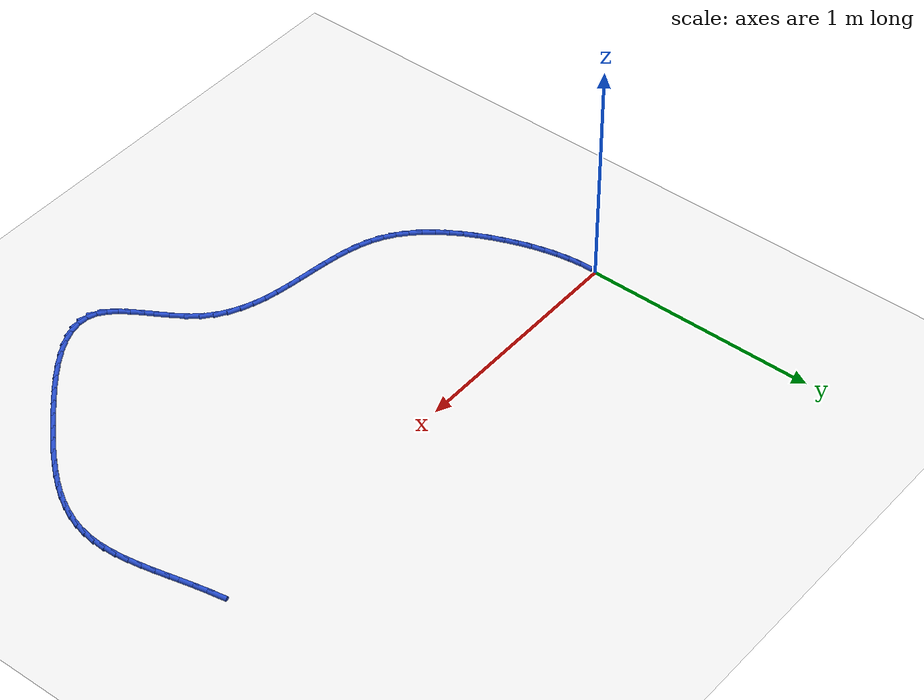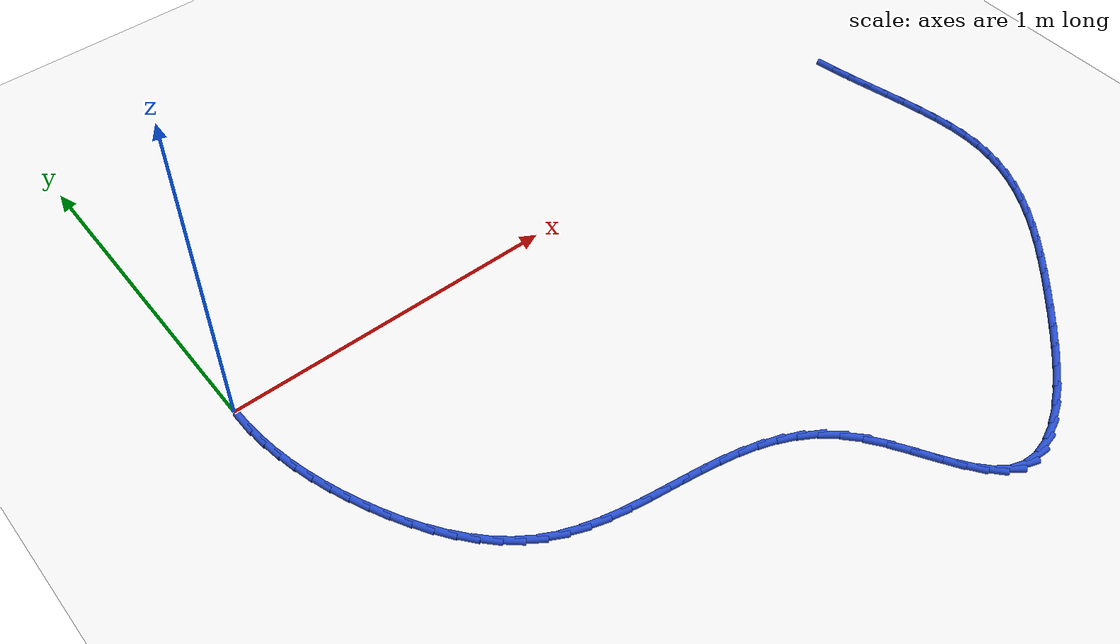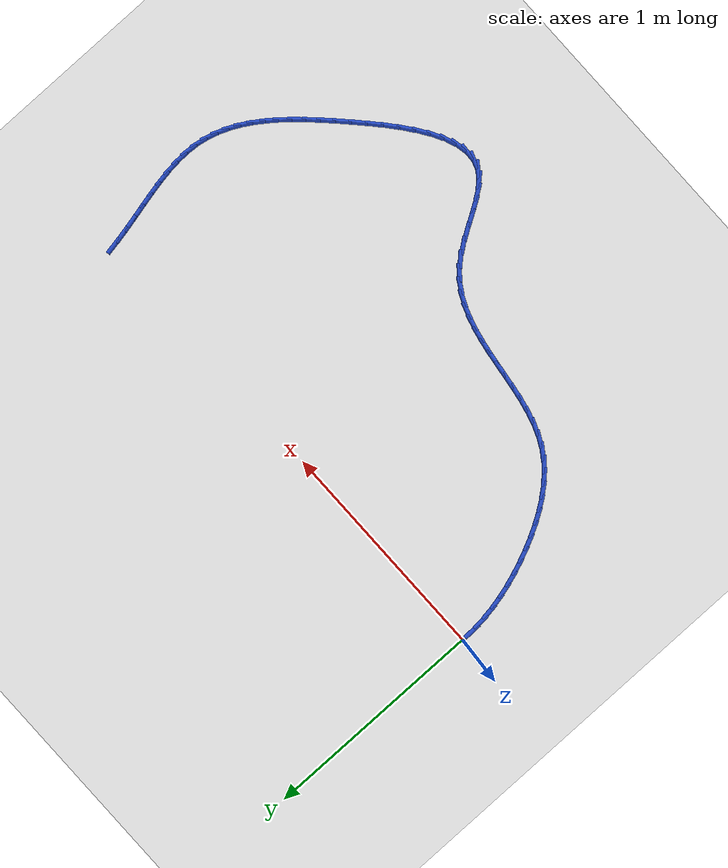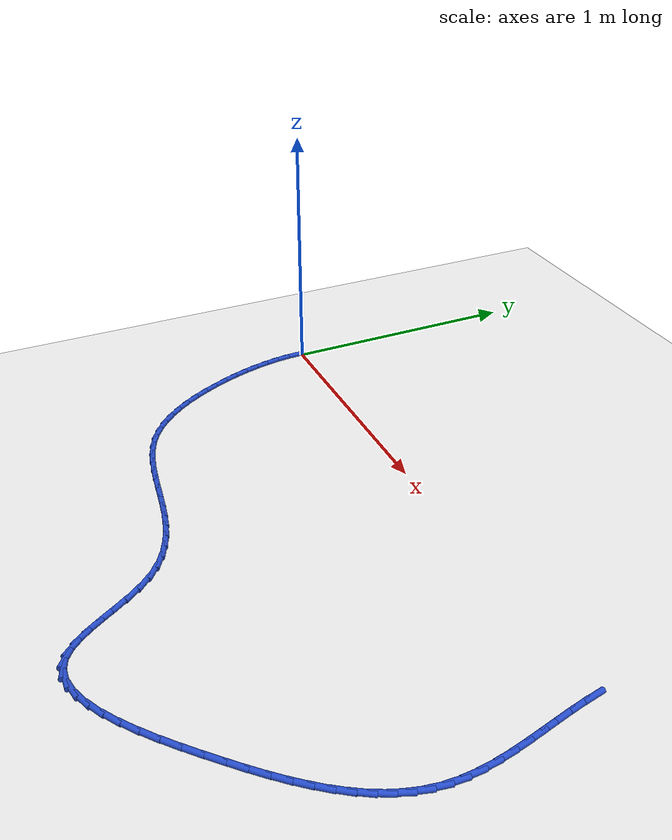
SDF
<sdf version="1.6">
 <world name="default">
  <model name="ground_plane">
   <static>1</static>
   <link name="link">
    <collision name="collision">
     <geometry><plane><normal>0 0 1</normal><size>100 100</size></plane></geometry>
     <surface><friction><ode><mu>100</mu><mu2>50</mu2></ode></friction></surface>
    </collision>
    <visual name="visual">
     <cast_shadows>0</cast_shadows>
     <geometry><plane><normal>0 0 1</normal><size>100 100</size></plane></geometry>
     <material>
      <script><uri>file://media/materials/scripts/gazebo.material</uri><name>Gazebo/WhiteGlow</name></script>
     </material>
    </visual>
   </link>
  </model>
  <model name="line">
   <link name="link_69">
    <pose>2.1973186577995145 -0.017034470085361225 0.01 0 1.57 -1.3849257255704295</pose>
    <collision name="collision">
     <geometry><cylinder><radius>0.01</radius><length>0.08</length></cylinder></geometry>
    </collision>
    <visual name="visual">
     <material>
      <script><name>Gazebo/Blue</name><uri>file://media/materials/scripts/gazebo.material</uri></script>
     </material>
     <geometry><cylinder><radius>0.01</radius><length>0.08</length></cylinder></geometry>
    </visual>
   </link>
   <link name="link_70">
    <pose>2.2079804380482653 -0.07373367814717799 0.01 0 1.57 -1.356535809975554</pose>
    <collision name="collision">
     <geometry><cylinder><radius>0.01</radius><length>0.08</length></cylinder></geometry>
    </collision>
    <visual name="visual">
     <material>
      <script><name>Gazebo/Blue</name><uri>file://media/materials/scripts/gazebo.material</uri></script>
     </material>
     <geometry><cylinder><radius>0.01</radius><length>0.08</length></cylinder></geometry>
    </visual>
   </link>
   <link name="link_71">
    <pose>2.2203728988543388 -0.1306841706579184 0.01 0 1.57 -1.341860793427429</pose>
    <collision name="collision">
     <geometry><cylinder><radius>0.01</radius><length>0.08</length></cylinder></geometry>
    </collision>
    <visual name="visual">
     <material>
      <script><name>Gazebo/Blue</name><uri>file://media/materials/scripts/gazebo.material</uri></script>
     </material>
     <geometry><cylinder><radius>0.01</radius><length>0.08</length></cylinder></geometry>
    </visual>
   </link>
   <link name="link_72">
    <pose>2.2336493698173423 -0.1876596421804087 0.01 0 1.57 -1.3404536822452415</pose>
    <collision name="collision">
     <geometry><cylinder><radius>0.01</radius><length>0.08</length></cylinder></geometry>
    </collision>
    <visual name="visual">
     <material>
      <script><name>Gazebo/Blue</name><uri>file://media/materials/scripts/gazebo.material</uri></script>
     </material>
     <geometry><cylinder><radius>0.01</radius><length>0.08</length></cylinder></geometry>
    </visual>
   </link>
   <link name="link_73">
    <pose>2.2469631805368815 -0.24443378727747544 0.01 0 1.57 -1.3524143530486437</pose>
    <collision name="collision">
     <geometry><cylinder><radius>0.01</radius><length>0.08</length></cylinder></geometry>
    </collision>
    <visual name="visual">
     <material>
      <script><name>Gazebo/Blue</name><uri>file://media/materials/scripts/gazebo.material</uri></script>
     </material>
     <geometry><cylinder><radius>0.01</radius><length>0.08</length></cylinder></geometry>
    </visual>
   </link>
   <link name="link_74">
    <pose>2.2594676606125614 -0.3007803005119425 0.01 0 1.57 -1.3784132512068</pose>
    <collision name="collision">
     <geometry><cylinder><radius>0.01</radius><length>0.08</length></cylinder></geometry>
    </collision>
    <visual name="visual">
     <material>
      <script><name>Gazebo/Blue</name><uri>file://media/materials/scripts/gazebo.material</uri></script>
     </material>
     <geometry><cylinder><radius>0.01</radius><length>0.08</length></cylinder></geometry>
    </visual>
   </link>
   <link name="link_75">
    <pose>2.270316139643991 -0.35647287644663667 0.01 0 1.57 -1.419695389007235</pose>
    <collision name="collision">
     <geometry><cylinder><radius>0.01</radius><length>0.08</length></cylinder></geometry>
    </collision>
    <visual name="visual">
     <material>
      <script><name>Gazebo/Blue</name><uri>file://media/materials/scripts/gazebo.material</uri></script>
     </material>
     <geometry><cylinder><radius>0.01</radius><length>0.08</length></cylinder></geometry>
    </visual>
   </link>
   <link name="link_76">
    <pose>2.278661947230774 -0.4112852096443834 0.01 0 1.57 -1.4780293225254646</pose>
    <collision name="collision">
     <geometry><cylinder><radius>0.01</radius><length>0.08</length></cylinder></geometry>
    </collision>
    <visual name="visual">
     <material>
      <script><name>Gazebo/Blue</name><uri>file://media/materials/scripts/gazebo.material</uri></script>
     </material>
     <geometry><cylinder><radius>0.01</radius><length>0.08</length></cylinder></geometry>
    </visual>
   </link>
   <link name="link_77">
    <pose>2.283658412972516 -0.46499099466800853 0.01 0 1.57 -1.5555137913919852</pose>
    <collision name="collision">
     <geometry><cylinder><radius>0.01</radius><length>0.08</length></cylinder></geometry>
    </collision>
    <visual name="visual">
     <material>
      <script><name>Gazebo/Blue</name><uri>file://media/materials/scripts/gazebo.material</uri></script>
     </material>
     <geometry><cylinder><radius>0.01</radius><length>0.08</length></cylinder></geometry>
    </visual>
   </link>
   <link name="link_78">
    <pose>2.2844588664688255 -0.5173639260803384 0.01 0 1.57 1.4879993568313852</pose>
    <collision name="collision">
     <geometry><cylinder><radius>0.01</radius><length>0.08</length></cylinder></geometry>
    </collision>
    <visual name="visual">
     <material>
      <script><name>Gazebo/Blue</name><uri>file://media/materials/scripts/gazebo.material</uri></script>
     </material>
     <geometry><cylinder><radius>0.01</radius><length>0.08</length></cylinder></geometry>
    </visual>
   </link>
   <link name="link_79">
    <pose>2.280241203972976 -0.5681872865945572 0.01 0 1.57 1.3801848130407448</pose>
    <collision name="collision">
     <geometry><cylinder><radius>0.01</radius><length>0.08</length></cylinder></geometry>
    </collision>
    <visual name="visual">
     <material>
      <script><name>Gazebo/Blue</name><uri>file://media/materials/scripts/gazebo.material</uri></script>
     </material>
     <geometry><cylinder><radius>0.01</radius><length>0.08</length></cylinder></geometry>
    </visual>
   </link>
   <link name="link_80">
    <pose>2.270733974750749 -0.6174592739851961 0.01 0 1.57 1.2765421704639537</pose>
    <collision name="collision">
     <geometry><cylinder><radius>0.01</radius><length>0.08</length></cylinder></geometry>
    </collision>
    <visual name="visual">
     <material>
      <script><name>Gazebo/Blue</name><uri>file://media/materials/scripts/gazebo.material</uri></script>
     </material>
     <geometry><cylinder><radius>0.01</radius><length>0.08</length></cylinder></geometry>
    </visual>
   </link>
   <link name="link_81">
    <pose>2.2562085087130908 -0.6653899285719131 0.01 0 1.57 1.1806394506742548</pose>
    <collision name="collision">
     <geometry><cylinder><radius>0.01</radius><length>0.08</length></cylinder></geometry>
    </collision>
    <visual name="visual">
     <material>
      <script><name>Gazebo/Blue</name><uri>file://media/materials/scripts/gazebo.material</uri></script>
     </material>
     <geometry><cylinder><radius>0.01</radius><length>0.08</length></cylinder></geometry>
    </visual>
   </link>
   <link name="link_82">
    <pose>2.236959127848804 -0.7121982642815408 0.01 0 1.57 1.0945688222387244</pose>
    <collision name="collision">
     <geometry><cylinder><radius>0.01</radius><length>0.08</length></cylinder></geometry>
    </collision>
    <visual name="visual">
     <material>
      <script><name>Gazebo/Blue</name><uri>file://media/materials/scripts/gazebo.material</uri></script>
     </material>
     <geometry><cylinder><radius>0.01</radius><length>0.08</length></cylinder></geometry>
    </visual>
   </link>
   <link name="link_83">
    <pose>2.2132801541466915 -0.7581032950409091 0.01 0 1.57 1.0193643728738007</pose>
    <collision name="collision">
     <geometry><cylinder><radius>0.01</radius><length>0.08</length></cylinder></geometry>
    </collision>
    <visual name="visual">
     <material>
      <script><name>Gazebo/Blue</name><uri>file://media/materials/scripts/gazebo.material</uri></script>
     </material>
     <geometry><cylinder><radius>0.01</radius><length>0.08</length></cylinder></geometry>
    </visual>
   </link>
   <link name="link_84">
    <pose>2.185465909595557 -0.8033240347768503 0.01 0 1.57 0.9551929601029895</pose>
    <collision name="collision">
     <geometry><cylinder><radius>0.01</radius><length>0.08</length></cylinder></geometry>
    </collision>
    <visual name="visual">
     <material>
      <script><name>Gazebo/Blue</name><uri>file://media/materials/scripts/gazebo.material</uri></script>
     </material>
     <geometry><cylinder><radius>0.01</radius><length>0.08</length></cylinder></geometry>
    </visual>
   </link>
   <link name="link_85">
    <pose>2.1538107161842017 -0.8480794974161961 0.01 0 1.57 0.9016358362586027</pose>
    <collision name="collision">
     <geometry><cylinder><radius>0.01</radius><length>0.08</length></cylinder></geometry>
    </collision>
    <visual name="visual">
     <material>
      <script><name>Gazebo/Blue</name><uri>file://media/materials/scripts/gazebo.material</uri></script>
     </material>
     <geometry><cylinder><radius>0.01</radius><length>0.08</length></cylinder></geometry>
    </visual>
   </link>
   <link name="link_86">
    <pose>2.1186088959014295 -0.8925886968857779 0.01 0 1.57 0.8579509660002833</pose>
    <collision name="collision">
     <geometry><cylinder><radius>0.01</radius><length>0.08</length></cylinder></geometry>
    </collision>
    <visual name="visual">
     <material>
      <script><name>Gazebo/Blue</name><uri>file://media/materials/scripts/gazebo.material</uri></script>
     </material>
     <geometry><cylinder><radius>0.01</radius><length>0.08</length></cylinder></geometry>
    </visual>
   </link>
   <link name="link_87">
    <pose>2.080154770736042 -0.9370706471124275 0.01 0 1.57 0.8232679009975615</pose>
    <collision name="collision">
     <geometry><cylinder><radius>0.01</radius><length>0.08</length></cylinder></geometry>
    </collision>
    <visual name="visual">
     <material>
      <script><name>Gazebo/Blue</name><uri>file://media/materials/scripts/gazebo.material</uri></script>
     </material>
     <geometry><cylinder><radius>0.01</radius><length>0.08</length></cylinder></geometry>
    </visual>
   </link>
   <link name="link_88">
    <pose>2.0387426626768432 -0.9817443620229758 0.01 0 1.57 0.7967112920725055</pose>
    <collision name="collision">
     <geometry><cylinder><radius>0.01</radius><length>0.08</length></cylinder></geometry>
    </collision>
    <visual name="visual">
     <material>
      <script><name>Gazebo/Blue</name><uri>file://media/materials/scripts/gazebo.material</uri></script>
     </material>
     <geometry><cylinder><radius>0.01</radius><length>0.08</length></cylinder></geometry>
    </visual>
   </link>
   <link name="link_89">
    <pose>1.994666893712635 -1.0268288555442544 0.01 0 1.57 0.7774683531872651</pose>
    <collision name="collision">
     <geometry><cylinder><radius>0.01</radius><length>0.08</length></cylinder></geometry>
    </collision>
    <visual name="visual">
     <material>
      <script><name>Gazebo/Blue</name><uri>file://media/materials/scripts/gazebo.material</uri></script>
     </material>
     <geometry><cylinder><radius>0.01</radius><length>0.08</length></cylinder></geometry>
    </visual>
   </link>
   <link name="link_90">
    <pose>1.9482217858322206 -1.072543141603095 0.01 0 1.57 0.7637480107080004</pose>
    <collision name="collision">
     <geometry><cylinder><radius>0.01</radius><length>0.08</length></cylinder></geometry>
    </collision>
    <visual name="visual">
     <material>
      <script><name>Gazebo/Blue</name><uri>file://media/materials/scripts/gazebo.material</uri></script>
     </material>
     <geometry><cylinder><radius>0.01</radius><length>0.08</length></cylinder></geometry>
    </visual>
   </link>
   <link name="link_91">
    <pose>1.89972158699088 -1.1189874560079636 0.01 0 1.57 0.7464217289670588</pose>
    <collision name="collision">
     <geometry><cylinder><radius>0.01</radius><length>0.08</length></cylinder></geometry>
    </collision>
    <visual name="visual">
     <material>
      <script><name>Gazebo/Blue</name><uri>file://media/materials/scripts/gazebo.material</uri></script>
     </material>
     <geometry><cylinder><radius>0.01</radius><length>0.08</length></cylinder></geometry>
    </visual>
   </link>
   <link name="link_92">
    <pose>1.8496403704826012 -1.165309320277675 0.01 0 1.57 0.7206706636192776</pose>
    <collision name="collision">
     <geometry><cylinder><radius>0.01</radius><length>0.08</length></cylinder></geometry>
    </collision>
    <visual name="visual">
     <material>
      <script><name>Gazebo/Blue</name><uri>file://media/materials/scripts/gazebo.material</uri></script>
     </material>
     <geometry><cylinder><radius>0.01</radius><length>0.08</length></cylinder></geometry>
    </visual>
   </link>
   <link name="link_93">
    <pose>1.7985290718054243 -1.210198082522943 0.01 0 1.57 0.6849409070924969</pose>
    <collision name="collision">
     <geometry><cylinder><radius>0.01</radius><length>0.08</length></cylinder></geometry>
    </collision>
    <visual name="visual">
     <material>
      <script><name>Gazebo/Blue</name><uri>file://media/materials/scripts/gazebo.material</uri></script>
     </material>
     <geometry><cylinder><radius>0.01</radius><length>0.08</length></cylinder></geometry>
    </visual>
   </link>
   <link name="link_94">
    <pose>1.7469391162652717 -1.2523401711236577 0.01 0 1.57 0.6365574526674862</pose>
    <collision name="collision">
     <geometry><cylinder><radius>0.01</radius><length>0.08</length></cylinder></geometry>
    </collision>
    <visual name="visual">
     <material>
      <script><name>Gazebo/Blue</name><uri>file://media/materials/scripts/gazebo.material</uri></script>
     </material>
     <geometry><cylinder><radius>0.01</radius><length>0.08</length></cylinder></geometry>
    </visual>
   </link>
   <link name="link_95">
    <pose>1.6954219291680637 -1.2904220144597087 0.01 0 1.57 0.5712137604818411</pose>
    <collision name="collision">
     <geometry><cylinder><radius>0.01</radius><length>0.08</length></cylinder></geometry>
    </collision>
    <visual name="visual">
     <material>
      <script><name>Gazebo/Blue</name><uri>file://media/materials/scripts/gazebo.material</uri></script>
     </material>
     <geometry><cylinder><radius>0.01</radius><length>0.08</length></cylinder></geometry>
    </visual>
   </link>
   <link name="link_96">
    <pose>1.6445289358197244 -1.3231300409109856 0.01 0 1.57 0.48216921990299527</pose>
    <collision name="collision">
     <geometry><cylinder><radius>0.01</radius><length>0.08</length></cylinder></geometry>
    </collision>
    <visual name="visual">
     <material>
      <script><name>Gazebo/Blue</name><uri>file://media/materials/scripts/gazebo.material</uri></script>
     </material>
     <geometry><cylinder><radius>0.01</radius><length>0.08</length></cylinder></geometry>
    </visual>
   </link>
   <link name="link_97">
    <pose>1.594811561526175 -1.3491506788573788 0.01 0 1.57 0.3591963336554845</pose>
    <collision name="collision">
     <geometry><cylinder><radius>0.01</radius><length>0.08</length></cylinder></geometry>
    </collision>
    <visual name="visual">
     <material>
      <script><name>Gazebo/Blue</name><uri>file://media/materials/scripts/gazebo.material</uri></script>
     </material>
     <geometry><cylinder><radius>0.01</radius><length>0.08</length></cylinder></geometry>
    </visual>
   </link>
   <link name="link_98">
    <pose>1.5468212315933378 -1.3671703566787787 0.01 0 1.57 0.18818192482241722</pose>
    <collision name="collision">
     <geometry><cylinder><radius>0.01</radius><length>0.08</length></cylinder></geometry>
    </collision>
    <visual name="visual">
     <material>
      <script><name>Gazebo/Blue</name><uri>file://media/materials/scripts/gazebo.material</uri></script>
     </material>
     <geometry><cylinder><radius>0.01</radius><length>0.08</length></cylinder></geometry>
    </visual>
   </link>
   <link name="link_99">
    <pose>1.5011093713271346 -1.3758755027550749 0.01 0 1.57 -0.04481300873442708</pose>
    <collision name="collision">
     <geometry><cylinder><radius>0.01</radius><length>0.08</length></cylinder></geometry>
    </collision>
    <visual name="visual">
     <material>
      <script><name>Gazebo/Blue</name><uri>file://media/materials/scripts/gazebo.material</uri></script>
     </material>
     <geometry><cylinder><radius>0.01</radius><length>0.08</length></cylinder></geometry>
    </visual>
   </link>
   <link name="link_100">
    <pose>1.4582274060334868 -1.3739525454661572 0.01 0 1.57 -0.3375628093932596</pose>
    <collision name="collision">
     <geometry><cylinder><radius>0.01</radius><length>0.08</length></cylinder></geometry>
    </collision>
    <visual name="visual">
     <material>
      <script><name>Gazebo/Blue</name><uri>file://media/materials/scripts/gazebo.material</uri></script>
     </material>
     <geometry><cylinder><radius>0.01</radius><length>0.08</length></cylinder></geometry>
    </visual>
   </link>
   <link name="link_101">
    <pose>1.4187267535622252 -1.3600879318327947 0.01 0 1.57 -0.6340761988292134</pose>
    <collision name="collision">
     <geometry><cylinder><radius>0.01</radius><length>0.08</length></cylinder></geometry>
    </collision>
    <visual name="visual">
     <material>
      <script><name>Gazebo/Blue</name><uri>file://media/materials/scripts/gazebo.material</uri></script>
     </material>
     <geometry><cylinder><radius>0.01</radius><length>0.08</length></cylinder></geometry>
    </visual>
   </link>
   <link name="link_102">
    <pose>1.3828608810578098 -1.3337130115402982 0.01 0 1.57 -0.8378586093425942</pose>
    <collision name="collision">
     <geometry><cylinder><radius>0.01</radius><length>0.08</length></cylinder></geometry>
    </collision>
    <visual name="visual">
     <material>
      <script><name>Gazebo/Blue</name><uri>file://media/materials/scripts/gazebo.material</uri></script>
     </material>
     <geometry><cylinder><radius>0.01</radius><length>0.08</length></cylinder></geometry>
    </visual>
   </link>
   <link name="link_103">
    <pose>1.3497943535598234 -1.2969814841954002 0.01 0 1.57 -0.9550534544021011</pose>
    <collision name="collision">
     <geometry><cylinder><radius>0.01</radius><length>0.08</length></cylinder></geometry>
    </collision>
    <visual name="visual">
     <material>
      <script><name>Gazebo/Blue</name><uri>file://media/materials/scripts/gazebo.material</uri></script>
     </material>
     <geometry><cylinder><radius>0.01</radius><length>0.08</length></cylinder></geometry>
    </visual>
   </link>
   <link name="link_104">
    <pose>1.3184430495963924 -1.2526687873020055 0.01 0 1.57 -1.0118869373610824</pose>
    <collision name="collision">
     <geometry><cylinder><radius>0.01</radius><length>0.08</length></cylinder></geometry>
    </collision>
    <visual name="visual">
     <material>
      <script><name>Gazebo/Blue</name><uri>file://media/materials/scripts/gazebo.material</uri></script>
     </material>
     <geometry><cylinder><radius>0.01</radius><length>0.08</length></cylinder></geometry>
    </visual>
   </link>
   <link name="link_105">
    <pose>1.2877228476956457 -1.203550358364022 0.01 0 1.57 -1.0234482499466875</pose>
    <collision name="collision">
     <geometry><cylinder><radius>0.01</radius><length>0.08</length></cylinder></geometry>
    </collision>
    <visual name="visual">
     <material>
      <script><name>Gazebo/Blue</name><uri>file://media/materials/scripts/gazebo.material</uri></script>
     </material>
     <geometry><cylinder><radius>0.01</radius><length>0.08</length></cylinder></geometry>
    </visual>
   </link>
   <link name="link_106">
    <pose>1.256549626385711 -1.1524016348853556 0.01 0 1.57 -0.9951462147761706</pose>
    <collision name="collision">
     <geometry><cylinder><radius>0.01</radius><length>0.08</length></cylinder></geometry>
    </collision>
    <visual name="visual">
     <material>
      <script><name>Gazebo/Blue</name><uri>file://media/materials/scripts/gazebo.material</uri></script>
     </material>
     <geometry><cylinder><radius>0.01</radius><length>0.08</length></cylinder></geometry>
    </visual>
   </link>
   <link name="link_107">
    <pose>1.2238392641947164 -1.101998054369913 0.01 0 1.57 -0.9249870926200119</pose>
    <collision name="collision">
     <geometry><cylinder><radius>0.01</radius><length>0.08</length></cylinder></geometry>
    </collision>
    <visual name="visual">
     <material>
      <script><name>Gazebo/Blue</name><uri>file://media/materials/scripts/gazebo.material</uri></script>
     </material>
     <geometry><cylinder><radius>0.01</radius><length>0.08</length></cylinder></geometry>
    </visual>
   </link>
   <link name="link_108">
    <pose>1.1885076396507896 -1.0551150543216001 0.01 0 1.57 -0.8063261941038757</pose>
    <collision name="collision">
     <geometry><cylinder><radius>0.01</radius><length>0.08</length></cylinder></geometry>
    </collision>
    <visual name="visual">
     <material>
      <script><name>Gazebo/Blue</name><uri>file://media/materials/scripts/gazebo.material</uri></script>
     </material>
     <geometry><cylinder><radius>0.01</radius><length>0.08</length></cylinder></geometry>
    </visual>
   </link>
   <link name="link_109">
    <pose>1.1495060913823814 -1.0144459119264764 0.01 0 1.57 -0.6630113426545055</pose>
    <collision name="collision">
     <geometry><cylinder><radius>0.01</radius><length>0.08</length></cylinder></geometry>
    </collision>
    <visual name="visual">
     <material>
      <script><name>Gazebo/Blue</name><uri>file://media/materials/scripts/gazebo.material</uri></script>
     </material>
     <geometry><cylinder><radius>0.01</radius><length>0.08</length></cylinder></geometry>
    </visual>
   </link>
   <link name="link_110">
    <pose>1.106554491431221 -0.9809032283731984 0.01 0 1.57 -0.5302668849809263</pose>
    <collision name="collision">
     <geometry><cylinder><radius>0.01</radius><length>0.08</length></cylinder></geometry>
    </collision>
    <visual name="visual">
     <material>
      <script><name>Gazebo/Blue</name><uri>file://media/materials/scripts/gazebo.material</uri></script>
     </material>
     <geometry><cylinder><radius>0.01</radius><length>0.08</length></cylinder></geometry>
    </visual>
   </link>
   <link name="link_111">
    <pose>1.0601159815618901 -0.9536774643003683 0.01 0 1.57 -0.4151644464484217</pose>
    <collision name="collision">
     <geometry><cylinder><radius>0.01</radius><length>0.08</length></cylinder></geometry>
    </collision>
    <visual name="visual">
     <material>
      <script><name>Gazebo/Blue</name><uri>file://media/materials/scripts/gazebo.material</uri></script>
     </material>
     <geometry><cylinder><radius>0.01</radius><length>0.08</length></cylinder></geometry>
    </visual>
   </link>
   <link name="link_112">
    <pose>1.010684109131511 -0.9318886312185573 0.01 0 1.57 -0.3203865140403987</pose>
    <collision name="collision">
     <geometry><cylinder><radius>0.01</radius><length>0.08</length></cylinder></geometry>
    </collision>
    <visual name="visual">
     <material>
      <script><name>Gazebo/Blue</name><uri>file://media/materials/scripts/gazebo.material</uri></script>
     </material>
     <geometry><cylinder><radius>0.01</radius><length>0.08</length></cylinder></geometry>
    </visual>
   </link>
   <link name="link_113">
    <pose>0.9587524214972073 -0.9146567406383381 0.01 0 1.57 -0.24620754382414295</pose>
    <collision name="collision">
     <geometry><cylinder><radius>0.01</radius><length>0.08</length></cylinder></geometry>
    </collision>
    <visual name="visual">
     <material>
      <script><name>Gazebo/Blue</name><uri>file://media/materials/scripts/gazebo.material</uri></script>
     </material>
     <geometry><cylinder><radius>0.01</radius><length>0.08</length></cylinder></geometry>
    </visual>
   </link>
   <link name="link_114">
    <pose>0.904814466016103 -0.9011018040702832 0.01 0 1.57 -0.19162911234541252</pose>
    <collision name="collision">
     <geometry><cylinder><radius>0.01</radius><length>0.08</length></cylinder></geometry>
    </collision>
    <visual name="visual">
     <material>
      <script><name>Gazebo/Blue</name><uri>file://media/materials/scripts/gazebo.material</uri></script>
     </material>
     <geometry><cylinder><radius>0.01</radius><length>0.08</length></cylinder></geometry>
    </visual>
   </link>
   <link name="link_115">
    <pose>0.8493637900453211 -0.8903438330249634 0.01 0 1.57 -0.15530062624332902</pose>
    <collision name="collision">
     <geometry><cylinder><radius>0.01</radius><length>0.08</length></cylinder></geometry>
    </collision>
    <visual name="visual">
     <material>
      <script><name>Gazebo/Blue</name><uri>file://media/materials/scripts/gazebo.material</uri></script>
     </material>
     <geometry><cylinder><radius>0.01</radius><length>0.08</length></cylinder></geometry>
    </visual>
   </link>
   <link name="link_116">
    <pose>0.7928939409419851 -0.8815028390129516 0.01 0 1.57 -0.1360770671092915</pose>
    <collision name="collision">
     <geometry><cylinder><radius>0.01</radius><length>0.08</length></cylinder></geometry>
    </collision>
    <visual name="visual">
     <material>
      <script><name>Gazebo/Blue</name><uri>file://media/materials/scripts/gazebo.material</uri></script>
     </material>
     <geometry><cylinder><radius>0.01</radius><length>0.08</length></cylinder></geometry>
    </visual>
   </link>
   <link name="link_117">
    <pose>0.7358984660632168 -0.8736988335448196 0.01 0 1.57 -0.13329802251519035</pose>
    <collision name="collision">
     <geometry><cylinder><radius>0.01</radius><length>0.08</length></cylinder></geometry>
    </collision>
    <visual name="visual">
     <material>
      <script><name>Gazebo/Blue</name><uri>file://media/materials/scripts/gazebo.material</uri></script>
     </material>
     <geometry><cylinder><radius>0.01</radius><length>0.08</length></cylinder></geometry>
    </visual>
   </link>
   <link name="link_118">
    <pose>0.6788709127661423 -0.8660518281311397 0.01 0 1.57 -0.14690247775925167</pose>
    <collision name="collision">
     <geometry><cylinder><radius>0.01</radius><length>0.08</length></cylinder></geometry>
    </collision>
    <visual name="visual">
     <material>
      <script><name>Gazebo/Blue</name><uri>file://media/materials/scripts/gazebo.material</uri></script>
     </material>
     <geometry><cylinder><radius>0.01</radius><length>0.08</length></cylinder></geometry>
    </visual>
   </link>
   <link name="link_119">
    <pose>0.6223048284078835 -0.8576818342824837 0.01 0 1.57 -0.17744803452361152</pose>
    <collision name="collision">
     <geometry><cylinder><radius>0.01</radius><length>0.08</length></cylinder></geometry>
    </collision>
    <visual name="visual">
     <material>
      <script><name>Gazebo/Blue</name><uri>file://media/materials/scripts/gazebo.material</uri></script>
     </material>
     <geometry><cylinder><radius>0.01</radius><length>0.08</length></cylinder></geometry>
    </visual>
   </link>
   <link name="link_120">
    <pose>0.5666937603455637 -0.8477088635094236 0.01 0 1.57 -0.2260431399902754</pose>
    <collision name="collision">
     <geometry><cylinder><radius>0.01</radius><length>0.08</length></cylinder></geometry>
    </collision>
    <visual name="visual">
     <material>
      <script><name>Gazebo/Blue</name><uri>file://media/materials/scripts/gazebo.material</uri></script>
     </material>
     <geometry><cylinder><radius>0.01</radius><length>0.08</length></cylinder></geometry>
    </visual>
   </link>
   <link name="link_121">
    <pose>0.5125312559363063 -0.8352529273225315 0.01 0 1.57 -0.29413859664285213</pose>
    <collision name="collision">
     <geometry><cylinder><radius>0.01</radius><length>0.08</length></cylinder></geometry>
    </collision>
    <visual name="visual">
     <material>
      <script><name>Gazebo/Blue</name><uri>file://media/materials/scripts/gazebo.material</uri></script>
     </material>
     <geometry><cylinder><radius>0.01</radius><length>0.08</length></cylinder></geometry>
    </visual>
   </link>
   <link name="link_122">
    <pose>0.4603108625372342 -0.8194340372323795 0.01 0 1.57 -0.38306544143606414</pose>
    <collision name="collision">
     <geometry><cylinder><radius>0.01</radius><length>0.08</length></cylinder></geometry>
    </collision>
    <visual name="visual">
     <material>
      <script><name>Gazebo/Blue</name><uri>file://media/materials/scripts/gazebo.material</uri></script>
     </material>
     <geometry><cylinder><radius>0.01</radius><length>0.08</length></cylinder></geometry>
    </visual>
   </link>
   <link name="link_123">
    <pose>0.410526127505472 -0.7993722047495396 0.01 0 1.57 -0.4930811666445357</pose>
    <collision name="collision">
     <geometry><cylinder><radius>0.01</radius><length>0.08</length></cylinder></geometry>
    </collision>
    <visual name="visual">
     <material>
      <script><name>Gazebo/Blue</name><uri>file://media/materials/scripts/gazebo.material</uri></script>
     </material>
     <geometry><cylinder><radius>0.01</radius><length>0.08</length></cylinder></geometry>
    </visual>
   </link>
   <link name="link_124">
    <pose>0.36366834407702037 -0.7741930604036197 0.01 0 1.57 -0.612412774654111</pose>
    <collision name="collision">
     <geometry><cylinder><radius>0.01</radius><length>0.08</length></cylinder></geometry>
    </collision>
    <visual name="visual">
     <material>
      <script><name>Gazebo/Blue</name><uri>file://media/materials/scripts/gazebo.material</uri></script>
     </material>
     <geometry><cylinder><radius>0.01</radius><length>0.08</length></cylinder></geometry>
    </visual>
   </link>
   <link name="link_125">
    <pose>0.32002417918654835 -0.743532322257304 0.01 0 1.57 -0.7209341967770788</pose>
    <collision name="collision">
     <geometry><cylinder><radius>0.01</radius><length>0.08</length></cylinder></geometry>
    </collision>
    <visual name="visual">
     <material>
      <script><name>Gazebo/Blue</name><uri>file://media/materials/scripts/gazebo.material</uri></script>
     </material>
     <geometry><cylinder><radius>0.01</radius><length>0.08</length></cylinder></geometry>
    </visual>
   </link>
   <link name="link_126">
    <pose>0.2795150910191331 -0.7079360919795095 0.01 0 1.57 -0.8164171953397383</pose>
    <collision name="collision">
     <geometry><cylinder><radius>0.01</radius><length>0.08</length></cylinder></geometry>
    </collision>
    <visual name="visual">
     <material>
      <script><name>Gazebo/Blue</name><uri>file://media/materials/scripts/gazebo.material</uri></script>
     </material>
     <geometry><cylinder><radius>0.01</radius><length>0.08</length></cylinder></geometry>
    </visual>
   </link>
   <link name="link_127">
    <pose>0.2420247483431502 -0.6680446717901934 0.01 0 1.57 -0.8995533990146333</pose>
    <collision name="collision">
     <geometry><cylinder><radius>0.01</radius><length>0.08</length></cylinder></geometry>
    </collision>
    <visual name="visual">
     <material>
      <script><name>Gazebo/Blue</name><uri>file://media/materials/scripts/gazebo.material</uri></script>
     </material>
     <geometry><cylinder><radius>0.01</radius><length>0.08</length></cylinder></geometry>
    </visual>
   </link>
   <link name="link_128">
    <pose>0.20743681992697344 -0.6244983639093122 0.01 0 1.57 -0.9715600464270856</pose>
    <collision name="collision">
     <geometry><cylinder><radius>0.01</radius><length>0.08</length></cylinder></geometry>
    </collision>
    <visual name="visual">
     <material>
      <script><name>Gazebo/Blue</name><uri>file://media/materials/scripts/gazebo.material</uri></script>
     </material>
     <geometry><cylinder><radius>0.01</radius><length>0.08</length></cylinder></geometry>
    </visual>
   </link>
   <link name="link_129">
    <pose>0.1756349745389773 -0.5779374705568227 0.01 0 1.57 -1.0338250448386326</pose>
    <collision name="collision">
     <geometry><cylinder><radius>0.01</radius><length>0.08</length></cylinder></geometry>
    </collision>
    <visual name="visual">
     <material>
      <script><name>Gazebo/Blue</name><uri>file://media/materials/scripts/gazebo.material</uri></script>
     </material>
     <geometry><cylinder><radius>0.01</radius><length>0.08</length></cylinder></geometry>
    </visual>
   </link>
   <link name="link_130">
    <pose>0.14650288094753602 -0.5290022939526807 0.01 0 1.57 -1.08769958357296</pose>
    <collision name="collision">
     <geometry><cylinder><radius>0.01</radius><length>0.08</length></cylinder></geometry>
    </collision>
    <visual name="visual">
     <material>
      <script><name>Gazebo/Blue</name><uri>file://media/materials/scripts/gazebo.material</uri></script>
     </material>
     <geometry><cylinder><radius>0.01</radius><length>0.08</length></cylinder></geometry>
    </visual>
   </link>
   <link name="link_131">
    <pose>0.11992420792102365 -0.4783331363168427 0.01 0 1.57 -1.1344015600165425</pose>
    <collision name="collision">
     <geometry><cylinder><radius>0.01</radius><length>0.08</length></cylinder></geometry>
    </collision>
    <visual name="visual">
     <material>
      <script><name>Gazebo/Blue</name><uri>file://media/materials/scripts/gazebo.material</uri></script>
     </material>
     <geometry><cylinder><radius>0.01</radius><length>0.08</length></cylinder></geometry>
    </visual>
   </link>
   <link name="link_132">
    <pose>0.09578274536844603 -0.4265700432909285 0.01 0 1.57 -1.1769452848861284</pose>
    <collision name="collision">
     <geometry><cylinder><radius>0.01</radius><length>0.08</length></cylinder></geometry>
    </collision>
    <visual name="visual">
     <material>
      <script><name>Gazebo/Blue</name><uri>file://media/materials/scripts/gazebo.material</uri></script>
     </material>
     <geometry><cylinder><radius>0.01</radius><length>0.08</length></cylinder></geometry>
    </visual>
   </link>
   <link name="link_133">
    <pose>0.07402662501587248 -0.37421678322940194 0.01 0 1.57 -1.2211431084769244</pose>
    <collision name="collision">
     <geometry><cylinder><radius>0.01</radius><length>0.08</length></cylinder></geometry>
    </collision>
    <visual name="visual">
     <material>
      <script><name>Gazebo/Blue</name><uri>file://media/materials/scripts/gazebo.material</uri></script>
     </material>
     <geometry><cylinder><radius>0.01</radius><length>0.08</length></cylinder></geometry>
    </visual>
   </link>
   <link name="link_134">
    <pose>0.05477397315757531 -0.32141707250743473 0.01 0 1.57 -1.2680755552393441</pose>
    <collision name="collision">
     <geometry><cylinder><radius>0.01</radius><length>0.08</length></cylinder></geometry>
    </collision>
    <visual name="visual">
     <material>
      <script><name>Gazebo/Blue</name><uri>file://media/materials/scripts/gazebo.material</uri></script>
     </material>
     <geometry><cylinder><radius>0.01</radius><length>0.08</length></cylinder></geometry>
    </visual>
   </link>
   <link name="link_135">
    <pose>0.03817066657234718 -0.2682558514052695 0.01 0 1.57 -1.3179317625809275</pose>
    <collision name="collision">
     <geometry><cylinder><radius>0.01</radius><length>0.08</length></cylinder></geometry>
    </collision>
    <visual name="visual">
     <material>
      <script><name>Gazebo/Blue</name><uri>file://media/materials/scripts/gazebo.material</uri></script>
     </material>
     <geometry><cylinder><radius>0.01</radius><length>0.08</length></cylinder></geometry>
    </visual>
   </link>
   <link name="link_136">
    <pose>0.024362582038981572 -0.214818060203151 0.01 0 1.57 -1.3708721993516049</pose>
    <collision name="collision">
     <geometry><cylinder><radius>0.01</radius><length>0.08</length></cylinder></geometry>
    </collision>
    <visual name="visual">
     <material>
      <script><name>Gazebo/Blue</name><uri>file://media/materials/scripts/gazebo.material</uri></script>
     </material>
     <geometry><cylinder><radius>0.01</radius><length>0.08</length></cylinder></geometry>
    </visual>
   </link>
   <link name="link_137">
    <pose>0.01349559633627112 -0.16118863918132156 0.01 0 1.57 -1.4270136316212885</pose>
    <collision name="collision">
     <geometry><cylinder><radius>0.01</radius><length>0.08</length></cylinder></geometry>
    </collision>
    <visual name="visual">
     <material>
      <script><name>Gazebo/Blue</name><uri>file://media/materials/scripts/gazebo.material</uri></script>
     </material>
     <geometry><cylinder><radius>0.01</radius><length>0.08</length></cylinder></geometry>
    </visual>
   </link>
   <link name="link_138">
    <pose>0.005715586243008752 -0.1074525286200246 0.01 0 1.57 -1.4864112823522235</pose>
    <collision name="collision">
     <geometry><cylinder><radius>0.01</radius><length>0.08</length></cylinder></geometry>
    </collision>
    <visual name="visual">
     <material>
      <script><name>Gazebo/Blue</name><uri>file://media/materials/scripts/gazebo.material</uri></script>
     </material>
     <geometry><cylinder><radius>0.01</radius><length>0.08</length></cylinder></geometry>
    </visual>
   </link>
   <link name="link_139">
    <pose>0.001168428537987409 -0.05369466879950314 0.01 0 1.57 -1.5490391544316553</pose>
    <collision name="collision">
     <geometry><cylinder><radius>0.01</radius><length>0.08</length></cylinder></geometry>
    </collision>
    <visual name="visual">
     <material>
      <script><name>Gazebo/Blue</name><uri>file://media/materials/scripts/gazebo.material</uri></script>
     </material>
     <geometry><cylinder><radius>0.01</radius><length>0.08</length></cylinder></geometry>
    </visual>
   </link>
  </model>
 </world>
</sdf>
